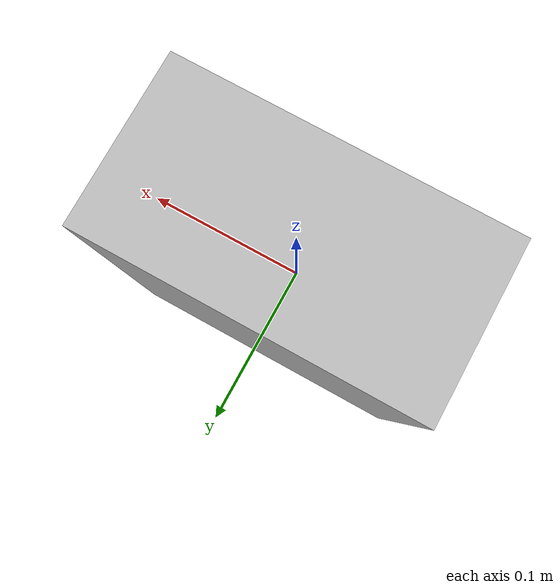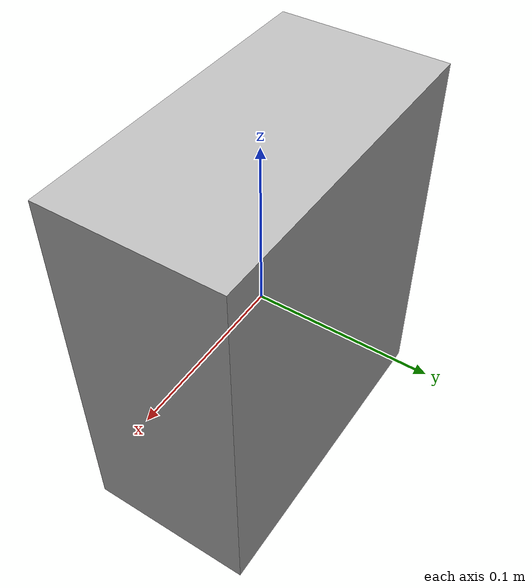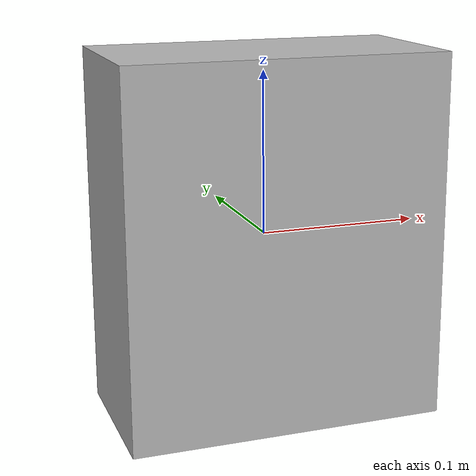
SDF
<?xml version='1.0'?>
<sdf version='1.6'>
  <model name='BoxWood_small'>
    <link name='link'>
      <inertial>
        <mass>0.470029</mass>
        <inertia>
          <ixx>0.0013484</ixx>
          <ixy>0</ixy>
          <ixz>0</ixz>
          <iyy>0.00131238</iyy>
          <iyz>0</iyz>
          <izz>0.00199015</izz>
        </inertia>
        <pose frame=''>0 0 0 0 -0 0</pose>
      </inertial>
      <self_collide>0</self_collide>
      <enable_wind>0</enable_wind>
      <kinematic>0</kinematic>
      <pose frame=''>0 0 0 0 -0 0</pose>
      <gravity>1</gravity>
      <visual name='visual'>
        <pose frame=''>0 0 0 0 -0 0</pose>
        <geometry>
          <box>
            <size>0.195 0.10 0.225</size>
          </box>
        </geometry>
          <material>
            <script>
              <uri>../objects/BoxWood/materials/scripts</uri>
              <uri>../objects/BoxWood/materials/textures</uri>
              <name>BrickBox/Diffuse</name>
            </script>
          </material>
        <transparency>0</transparency>
        <cast_shadows>0</cast_shadows>
      </visual>
      <collision name='collision'>
        <laser_retro>0</laser_retro>
        <max_contacts>10</max_contacts>
        <pose frame=''>0 0 0 0 -0 0</pose>
        <geometry>
          <box>
            <size>0.195 0.10 0.225</size>
          </box>
        </geometry>
        <surface>
          <friction>
            <ode>
              <mu>1</mu>
              <mu2>1</mu2>
              <fdir1>0 0 0</fdir1>
              <slip1>0</slip1>
              <slip2>0</slip2>
            </ode>
            <torsional>
              <coefficient>1</coefficient>
              <patch_radius>0</patch_radius>
              <surface_radius>0</surface_radius>
              <use_patch_radius>1</use_patch_radius>
              <ode>
                <slip>0</slip>
              </ode>
            </torsional>
          </friction>
          <bounce>
            <restitution_coefficient>0</restitution_coefficient>
            <threshold>1e+06</threshold>
          </bounce>
          <contact>
            <collide_without_contact>0</collide_without_contact>
            <collide_without_contact_bitmask>1</collide_without_contact_bitmask>
            <collide_bitmask>1</collide_bitmask>
            <ode>
              <soft_cfm>0</soft_cfm>
              <soft_erp>0.2</soft_erp>
              <kp>100000</kp>
              <kd>1</kd>
              <max_vel>0.1</max_vel>
              <min_depth>0.001</min_depth>
            </ode>
            <bullet>
              <split_impulse>1</split_impulse>
              <split_impulse_penetration_threshold>-0.01</split_impulse_penetration_threshold>
              <soft_cfm>0</soft_cfm>
              <soft_erp>0.2</soft_erp>
              <kp>100000</kp>
              <kd>1</kd>
            </bullet>
          </contact>
        </surface>
      </collision>
    </link>
    <static>0</static>
    <allow_auto_disable>1</allow_auto_disable>
	<plugin name="get_object_world_pose" filename="libgazebo_yarp_GetObjectWorldPose.so" >
    </plugin>
  </model>
</sdf>
